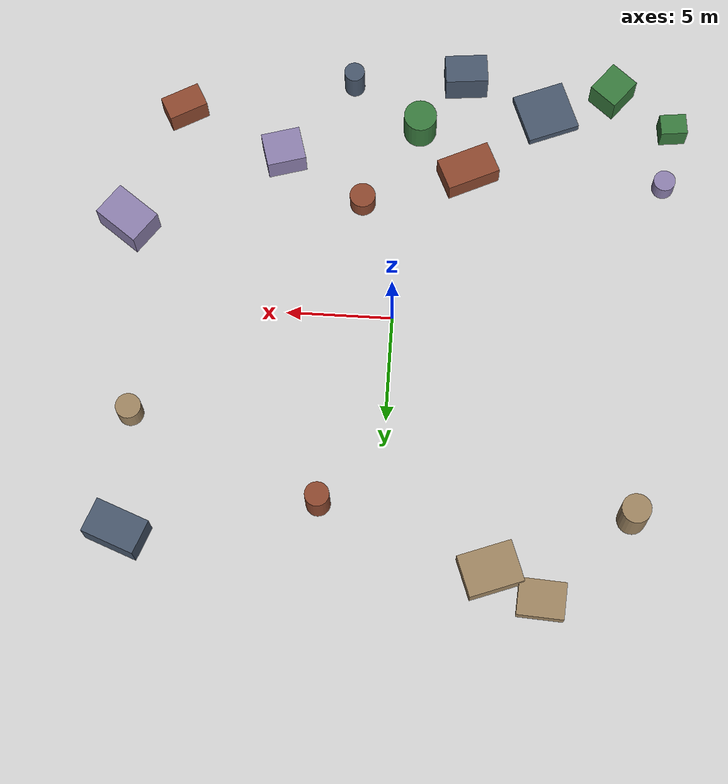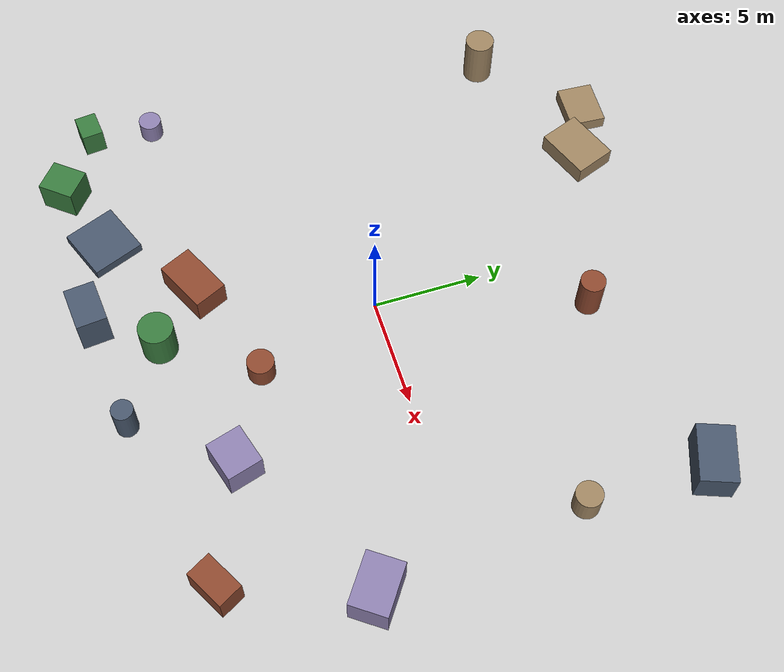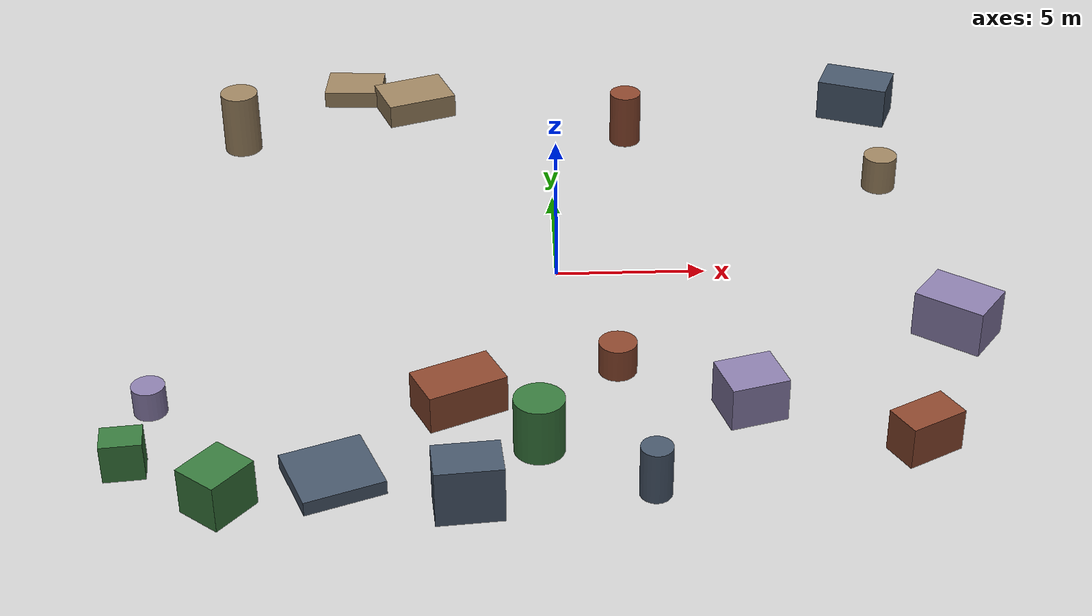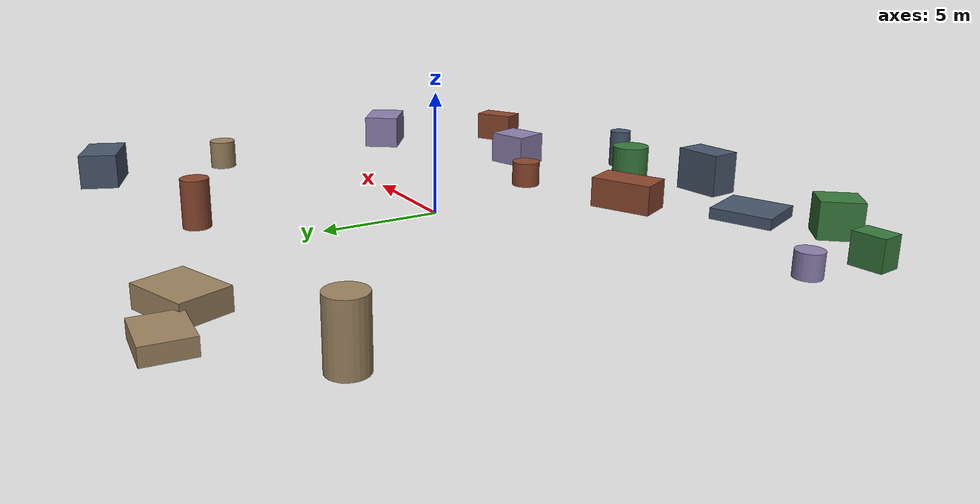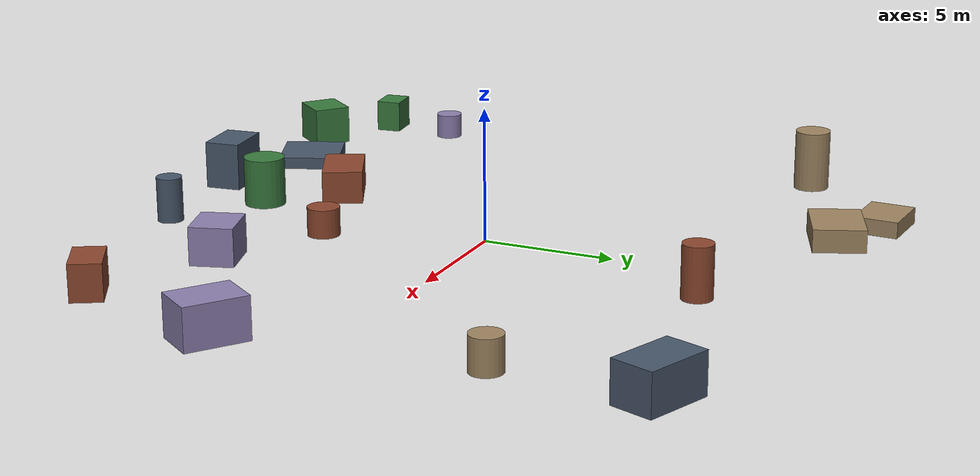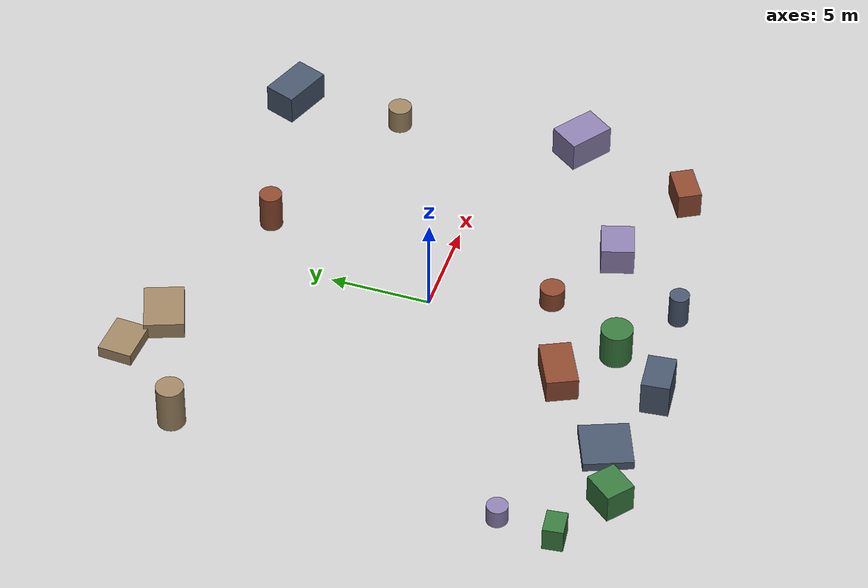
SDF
<sdf version="1.10">
 <world name="robotx_task1_uav_view">
  <gravity>0 0 -9.81</gravity>
  <physics name="physics" type="ode">
   <max_step_size>0.002</max_step_size>
   <real_time_factor>1.0</real_time_factor>
  </physics>
  <scene>
   <ambient>0.18 0.22 0.18 1.0</ambient>
   <background>0.35 0.55 0.40 1.0</background>
   <shadows>true</shadows>
   <grid>false</grid>
  </scene>
  <light name="sun" type="directional">
   <pose>0 0 300 0 0 0</pose>
   <diffuse>0.55 0.75 0.60 1.0</diffuse>
   <specular>0.28 0.45 0.32 1.0</specular>
   <direction>0.20 -0.06 -1.0</direction>
   <attenuation>
    <range>2500</range>
    <constant>0.85</constant>
    <linear>0.001</linear>
    <quadratic>0.00005</quadratic>
   </attenuation>
  </light>
  <plugin filename="gz-sim-physics-system" name="gz::sim::systems::Physics"/>
  <plugin filename="gz-sim-user-commands-system" name="gz::sim::systems::UserCommands"/>
  <plugin filename="gz-sim-scene-broadcaster-system" name="gz::sim::systems::SceneBroadcaster"/>
  <plugin filename="gz-sim-sensors-system" name="gz::sim::systems::Sensors">
   <render_engine>ogre2</render_engine>
  </plugin>
  <model name="scene_clutter_box_000">
   <static>true</static>
   <pose>-5.095 11.775 0.454 0 0 -1.214145</pose>
   <link name="link">
    <visual name="v">
     <geometry><box><size>1.955 2.589 0.867</size></box></geometry>
     <material><ambient>0.45 0.38 0.32 1.0</ambient><diffuse>0.62 0.52 0.38 1.0</diffuse></material>
    </visual>
   </link>
  </model>
  <model name="scene_clutter_box_001">
   <static>true</static>
   <pose>11.739 11.000 0.777 0 0 1.206626</pose>
   <link name="link">
    <visual name="v">
     <geometry><box><size>1.634 2.564 1.514</size></box></geometry>
     <material><ambient>0.18 0.22 0.28 1.0</ambient><diffuse>0.28 0.34 0.42 1.0</diffuse></material>
    </visual>
   </link>
  </model>
  <model name="scene_clutter_cyl_002">
   <static>true</static>
   <pose>1.768 -5.719 0.590 0 0 0.997468</pose>
   <link name="link">
    <visual name="v">
     <geometry><cylinder><radius>0.608</radius><length>1.081</length></cylinder></geometry>
     <material><ambient>0.35 0.16 0.12 1.0</ambient><diffuse>0.55 0.28 0.18 1.0</diffuse></material>
    </visual>
   </link>
  </model>
  <model name="scene_clutter_box_003">
   <static>true</static>
   <pose>-9.963 -12.000 0.776 0 0 0.884670</pose>
   <link name="link">
    <visual name="v">
     <geometry><box><size>1.653 1.478 1.513</size></box></geometry>
     <material><ambient>0.12 0.30 0.14 1.0</ambient><diffuse>0.22 0.48 0.24 1.0</diffuse></material>
    </visual>
   </link>
  </model>
  <model name="scene_clutter_cyl_004">
   <static>true</static>
   <pose>-12.538 -7.369 0.533 0 0 -2.557313</pose>
   <link name="link">
    <visual name="v">
     <geometry><cylinder><radius>0.519</radius><length>0.967</length></cylinder></geometry>
     <material><ambient>0.40 0.35 0.50 1.0</ambient><diffuse>0.55 0.50 0.68 1.0</diffuse></material>
    </visual>
   </link>
  </model>
  <model name="scene_clutter_cyl_005">
   <static>true</static>
   <pose>-11.386 9.008 1.204 0 0 1.382703</pose>
   <link name="link">
    <visual name="v">
     <geometry><cylinder><radius>0.673</radius><length>2.309</length></cylinder></geometry>
     <material><ambient>0.45 0.38 0.32 1.0</ambient><diffuse>0.62 0.52 0.38 1.0</diffuse></material>
    </visual>
   </link>
  </model>
  <model name="scene_clutter_box_006">
   <static>true</static>
   <pose>-6.794 -10.897 0.251 0 0 -1.191916</pose>
   <link name="link">
    <visual name="v">
     <geometry><box><size>2.418 2.514 0.462</size></box></geometry>
     <material><ambient>0.18 0.22 0.28 1.0</ambient><diffuse>0.28 0.34 0.42 1.0</diffuse></material>
    </visual>
   </link>
  </model>
  <model name="scene_clutter_cyl_007">
   <static>true</static>
   <pose>2.824 9.134 1.040 0 0 0.556245</pose>
   <link name="link">
    <visual name="v">
     <geometry><cylinder><radius>0.564</radius><length>1.981</length></cylinder></geometry>
     <material><ambient>0.35 0.16 0.12 1.0</ambient><diffuse>0.55 0.28 0.18 1.0</diffuse></material>
    </visual>
   </link>
  </model>
  <model name="scene_clutter_box_008">
   <static>true</static>
   <pose>-12.894 -10.228 0.651 0 0 -1.461320</pose>
   <link name="link">
    <visual name="v">
     <geometry><box><size>0.989 1.257 1.262</size></box></geometry>
     <material><ambient>0.12 0.30 0.14 1.0</ambient><diffuse>0.22 0.48 0.24 1.0</diffuse></material>
    </visual>
   </link>
  </model>
  <model name="scene_clutter_box_009">
   <static>true</static>
   <pose>5.686 -7.872 0.737 0 0 1.854711</pose>
   <link name="link">
    <visual name="v">
     <geometry><box><size>1.628 1.850 1.434</size></box></geometry>
     <material><ambient>0.40 0.35 0.50 1.0</ambient><diffuse>0.55 0.50 0.68 1.0</diffuse></material>
    </visual>
   </link>
  </model>
  <model name="scene_clutter_cyl_010">
   <static>true</static>
   <pose>11.756 5.372 0.688 0 0 -2.545021</pose>
   <link name="link">
    <visual name="v">
     <geometry><cylinder><radius>0.591</radius><length>1.275</length></cylinder></geometry>
     <material><ambient>0.45 0.38 0.32 1.0</ambient><diffuse>0.62 0.52 0.38 1.0</diffuse></material>
    </visual>
   </link>
  </model>
  <model name="scene_clutter_cyl_011">
   <static>true</static>
   <pose>2.549 -11.840 0.900 0 0 0.389122</pose>
   <link name="link">
    <visual name="v">
     <geometry><cylinder><radius>0.486</radius><length>1.699</length></cylinder></geometry>
     <material><ambient>0.18 0.22 0.28 1.0</ambient><diffuse>0.28 0.34 0.42 1.0</diffuse></material>
    </visual>
   </link>
  </model>
  <model name="scene_clutter_box_012">
   <static>true</static>
   <pose>10.649 -9.963 0.709 0 0 -2.637500</pose>
   <link name="link">
    <visual name="v">
     <geometry><box><size>1.903 1.176 1.378</size></box></geometry>
     <material><ambient>0.35 0.16 0.12 1.0</ambient><diffuse>0.55 0.28 0.18 1.0</diffuse></material>
    </visual>
   </link>
  </model>
  <model name="scene_clutter_cyl_013">
   <static>true</static>
   <pose>-0.755 -9.650 0.982 0 0 -2.558872</pose>
   <link name="link">
    <visual name="v">
     <geometry><cylinder><radius>0.781</radius><length>1.864</length></cylinder></geometry>
     <material><ambient>0.12 0.30 0.14 1.0</ambient><diffuse>0.22 0.48 0.24 1.0</diffuse></material>
    </visual>
   </link>
  </model>
  <model name="scene_clutter_box_014">
   <static>true</static>
   <pose>12.762 -3.973 0.797 0 0 2.514613</pose>
   <link name="link">
    <visual name="v">
     <geometry><box><size>2.349 1.697 1.555</size></box></geometry>
     <material><ambient>0.40 0.35 0.50 1.0</ambient><diffuse>0.55 0.50 0.68 1.0</diffuse></material>
    </visual>
   </link>
  </model>
  <model name="scene_clutter_box_015">
   <static>true</static>
   <pose>-7.442 12.949 0.332 0 0 1.509367</pose>
   <link name="link">
    <visual name="v">
     <geometry><box><size>1.691 2.155 0.623</size></box></geometry>
     <material><ambient>0.45 0.38 0.32 1.0</ambient><diffuse>0.62 0.52 0.38 1.0</diffuse></material>
    </visual>
   </link>
  </model>
  <model name="scene_clutter_box_016">
   <static>true</static>
   <pose>-2.834 -12.296 0.937 0 0 0.095143</pose>
   <link name="link">
    <visual name="v">
     <geometry><box><size>2.017 1.377 1.834</size></box></geometry>
     <material><ambient>0.18 0.22 0.28 1.0</ambient><diffuse>0.28 0.34 0.42 1.0</diffuse></material>
    </visual>
   </link>
  </model>
  <model name="scene_clutter_box_017">
   <static>true</static>
   <pose>-3.164 -7.493 0.644 0 0 2.007626</pose>
   <link name="link">
    <visual name="v">
     <geometry><box><size>1.556 2.573 1.247</size></box></geometry>
     <material><ambient>0.35 0.16 0.12 1.0</ambient><diffuse>0.55 0.28 0.18 1.0</diffuse></material>
    </visual>
   </link>
  </model>
  <model name="uav_dataset_camera">
   <static>false</static>
   <pose>0 0 26 0 0 0</pose>
   <plugin filename="librobotx_overhead_motion_plugin.dylib" name="robotx::OverheadMotionPlugin">
    <radius_x_m>10.43324</radius_x_m>
    <radius_y_m>7.06105</radius_y_m>
    <angular_speed_rad_s>0.073479</angular_speed_rad_s>
    <phase_rad>2.704595</phase_rad>
    <z_wobble_m>0.04419</z_wobble_m>
    <z_wobble_hz>0.07383</z_wobble_hz>
    <z_wobble_phase_rad>5.502357</z_wobble_phase_rad>
   </plugin>
   <link name="camera_link">
    <gravity>false</gravity>
    <sensor name="top_down_rgb" type="camera">
     <always_on>true</always_on>
     <update_rate>20</update_rate>
     <pose>0 0 0 0 1.57079632679 0</pose>
     <camera>
      <horizontal_fov>1.05</horizontal_fov>
      <image><width>1920</width><height>1080</height><format>R8G8B8</format></image>
      <clip><near>0.2</near><far>600</far></clip>
     </camera>
     <topic>/robotx/uav/camera/image_raw</topic>
     <visualize>true</visualize>
    </sensor>
   </link>
  </model>
 </world>
</sdf>
